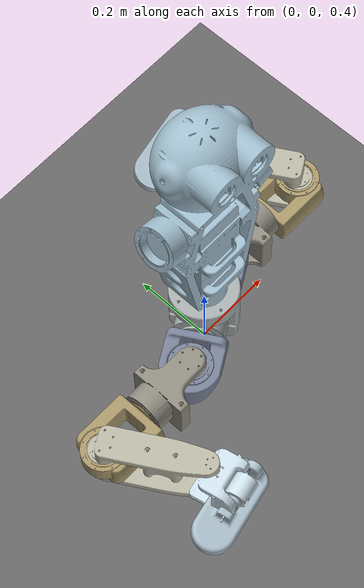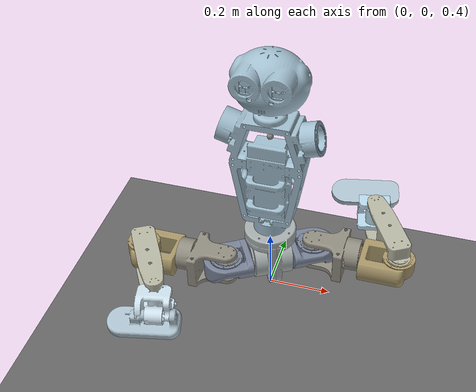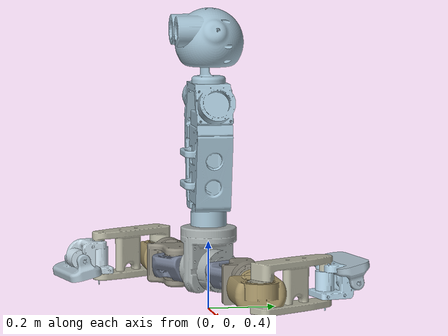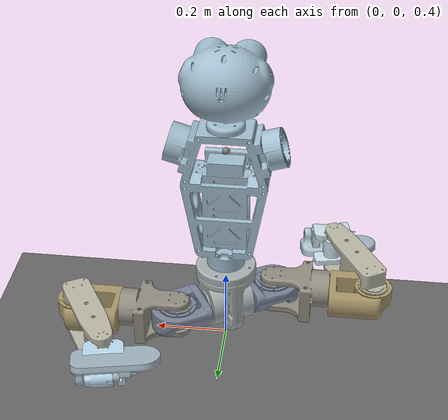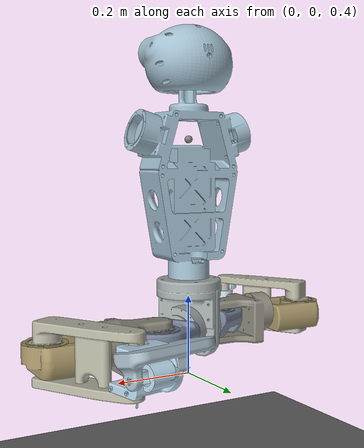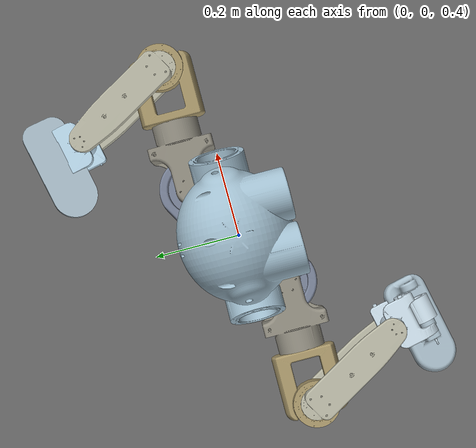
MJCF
<?xml version="1.0" ?>
<mujoco model="robot_7dof_arm">
  <compiler angle="radian" meshdir="meshes" autolimits="true"/>
  <default>
    <joint limited="true" damping="0.1" armature="0.01" frictionloss="0.0"/>
    <geom condim="3" contype="1" conaffinity="0" friction="0.9 0.2 0.2" solref="0.001 2"/>
    <motor ctrllimited="true"/>
    <equality solref="0.001 2"/>
    <default class="visualgeom">
      <geom type="mesh" condim="3" contype="0" conaffinity="0"/>
    </default>
    <default class="collision">
			<geom type="capsule" mass="0" density="0" condim="3" contype="1" conaffinity="1" group="3" />
		</default>
  </default>
  <option iterations="50" timestep="0.001" viscosity="1e-06" solver="PGS" gravity="0 0 -9.81">
    <flag frictionloss="enable"/>
  </option>
  <asset>
    <mesh name="fused_component_upper_limb_assembly_7_dof_1_torso_1_top_skeleton_2_simple" file="fused_component_upper_limb_assembly_7_dof_1_torso_1_top_skeleton_2_simple.stl"/>
    <mesh name="fused_component_upper_limb_assembly_7_dof_1_full_arm_7_dof_1_lower_arm_3_dof_1_hand_1_slide_2_simple" file="fused_component_upper_limb_assembly_7_dof_1_full_arm_7_dof_1_lower_arm_3_dof_1_hand_1_slide_2_simple.stl"/>
    <mesh name="fused_component_upper_limb_assembly_7_dof_1_full_arm_7_dof_1_lower_arm_3_dof_1_hand_1_slide_1_simple" file="fused_component_upper_limb_assembly_7_dof_1_full_arm_7_dof_1_lower_arm_3_dof_1_hand_1_slide_1_simple.stl"/>
    <mesh name="fused_component_upper_limb_assembly_7_dof_1_full_arm_7_dof_2_lower_arm_3_dof_1_hand_1_slide_2_simple" file="fused_component_upper_limb_assembly_7_dof_1_full_arm_7_dof_2_lower_arm_3_dof_1_hand_1_slide_2_simple.stl"/>
    <mesh name="fused_component_upper_limb_assembly_7_dof_1_full_arm_7_dof_2_lower_arm_3_dof_1_hand_1_slide_1_simple" file="fused_component_upper_limb_assembly_7_dof_1_full_arm_7_dof_2_lower_arm_3_dof_1_hand_1_slide_1_simple.stl"/>
    <mesh name="fused_component_upper_limb_assembly_7_dof_1_full_arm_7_dof_1_lower_arm_3_dof_1_rmd_x4_24_mock_3_inner_rmd_x4_24_1_simple" file="fused_component_upper_limb_assembly_7_dof_1_full_arm_7_dof_1_lower_arm_3_dof_1_rmd_x4_24_mock_3_inner_rmd_x4_24_1_simple.stl"/>
    <mesh name="fused_component_upper_limb_assembly_7_dof_1_full_arm_7_dof_2_lower_arm_3_dof_1_rmd_x4_24_mock_3_inner_rmd_x4_24_1_simple" file="fused_component_upper_limb_assembly_7_dof_1_full_arm_7_dof_2_lower_arm_3_dof_1_rmd_x4_24_mock_3_inner_rmd_x4_24_1_simple.stl"/>
    <mesh name="fused_component_lower_limbs_1_left_foot_1_rmd_x4_24_mock_1_inner_rmd_x4_24_1_simple" file="fused_component_lower_limbs_1_left_foot_1_rmd_x4_24_mock_1_inner_rmd_x4_24_1_simple.stl"/>
    <mesh name="fused_component_lower_limbs_1_right_foot_1_rmd_x4_24_mock_1_inner_rmd_x4_24_1_simple" file="fused_component_lower_limbs_1_right_foot_1_rmd_x4_24_mock_1_inner_rmd_x4_24_1_simple.stl"/>
    <mesh name="fused_component_upper_limb_assembly_7_dof_1_full_arm_7_dof_1_lower_arm_3_dof_1_rmd_x4_24_mock_2_inner_rmd_x4_24_1_simple" file="fused_component_upper_limb_assembly_7_dof_1_full_arm_7_dof_1_lower_arm_3_dof_1_rmd_x4_24_mock_2_inner_rmd_x4_24_1_simple.stl"/>
    <mesh name="fused_component_upper_limb_assembly_7_dof_1_full_arm_7_dof_2_lower_arm_3_dof_1_rmd_x4_24_mock_2_inner_rmd_x4_24_1_simple" file="fused_component_upper_limb_assembly_7_dof_1_full_arm_7_dof_2_lower_arm_3_dof_1_rmd_x4_24_mock_2_inner_rmd_x4_24_1_simple.stl"/>
    <mesh name="fused_component_lower_limbs_1_leg_assembly_1_rmd_x4_24_mock_1_outer_rmd_x4_24_1_simple" file="fused_component_lower_limbs_1_leg_assembly_1_rmd_x4_24_mock_1_outer_rmd_x4_24_1_simple.stl"/>
    <mesh name="fused_component_lower_limbs_1_leg_assembly_2_rmd_x4_24_mock_1_outer_rmd_x4_24_1_simple" file="fused_component_lower_limbs_1_leg_assembly_2_rmd_x4_24_mock_1_outer_rmd_x4_24_1_simple.stl"/>
    <mesh name="fused_component_upper_limb_assembly_7_dof_1_full_arm_7_dof_1_lower_arm_3_dof_1_rmd_x4_24_mock_1_outer_rmd_x4_24_1_simple" file="fused_component_upper_limb_assembly_7_dof_1_full_arm_7_dof_1_lower_arm_3_dof_1_rmd_x4_24_mock_1_outer_rmd_x4_24_1_simple.stl"/>
    <mesh name="fused_component_upper_limb_assembly_7_dof_1_full_arm_7_dof_2_lower_arm_3_dof_1_rmd_x4_24_mock_1_outer_rmd_x4_24_1_simple" file="fused_component_upper_limb_assembly_7_dof_1_full_arm_7_dof_2_lower_arm_3_dof_1_rmd_x4_24_mock_1_outer_rmd_x4_24_1_simple.stl"/>
    <mesh name="fused_component_lower_limbs_1_leg_assembly_1_rmd_x8_90_mock_3_inner_rmd_x8_90_1_simple" file="fused_component_lower_limbs_1_leg_assembly_1_rmd_x8_90_mock_3_inner_rmd_x8_90_1_simple.stl"/>
    <mesh name="fused_component_lower_limbs_1_leg_assembly_2_rmd_x8_90_mock_3_inner_rmd_x8_90_1_simple" file="fused_component_lower_limbs_1_leg_assembly_2_rmd_x8_90_mock_3_inner_rmd_x8_90_1_simple.stl"/>
    <mesh name="fused_component_upper_limb_assembly_7_dof_1_full_arm_7_dof_1_upper_left_arm_1_rmd_x4_24_mock_2_inner_rmd_x4_24_1_simple" file="fused_component_upper_limb_assembly_7_dof_1_full_arm_7_dof_1_upper_left_arm_1_rmd_x4_24_mock_2_inner_rmd_x4_24_1_simple.stl"/>
    <mesh name="fused_component_upper_limb_assembly_7_dof_1_full_arm_7_dof_2_upper_left_arm_1_rmd_x4_24_mock_2_inner_rmd_x4_24_1_simple" file="fused_component_upper_limb_assembly_7_dof_1_full_arm_7_dof_2_upper_left_arm_1_rmd_x4_24_mock_2_inner_rmd_x4_24_1_simple.stl"/>
    <mesh name="fused_component_lower_limbs_1_leg_assembly_1_rmd_x8_90_mock_2_inner_rmd_x8_90_1_simple" file="fused_component_lower_limbs_1_leg_assembly_1_rmd_x8_90_mock_2_inner_rmd_x8_90_1_simple.stl"/>
    <mesh name="fused_component_lower_limbs_1_leg_assembly_2_rmd_x8_90_mock_2_inner_rmd_x8_90_1_simple" file="fused_component_lower_limbs_1_leg_assembly_2_rmd_x8_90_mock_2_inner_rmd_x8_90_1_simple.stl"/>
    <mesh name="fused_component_lower_limbs_1_leg_assembly_1_rmd_x8_90_mock_1_inner_rmd_x8_90_1_simple" file="fused_component_lower_limbs_1_leg_assembly_1_rmd_x8_90_mock_1_inner_rmd_x8_90_1_simple.stl"/>
    <mesh name="fused_component_upper_limb_assembly_7_dof_1_full_arm_7_dof_1_upper_left_arm_1_rmd_x4_24_mock_1_outer_rmd_x4_24_1_simple" file="fused_component_upper_limb_assembly_7_dof_1_full_arm_7_dof_1_upper_left_arm_1_rmd_x4_24_mock_1_outer_rmd_x4_24_1_simple.stl"/>
    <mesh name="fused_component_upper_limb_assembly_7_dof_1_full_arm_7_dof_2_upper_left_arm_1_rmd_x4_24_mock_1_outer_rmd_x4_24_1_simple" file="fused_component_upper_limb_assembly_7_dof_1_full_arm_7_dof_2_upper_left_arm_1_rmd_x4_24_mock_1_outer_rmd_x4_24_1_simple.stl"/>
    <mesh name="fused_component_lower_limbs_1_leg_assembly_2_rmd_x8_90_mock_1_inner_rmd_x8_90_1_simple" file="fused_component_lower_limbs_1_leg_assembly_2_rmd_x8_90_mock_1_inner_rmd_x8_90_1_simple.stl"/>
    <mesh name="fused_component_lower_limbs_1_leg_assembly_1_rmd_x12_150_mock_1_inner_x12_150_1_simple" file="fused_component_lower_limbs_1_leg_assembly_1_rmd_x12_150_mock_1_inner_x12_150_1_simple.stl"/>
    <mesh name="fused_component_upper_limb_assembly_7_dof_1_full_arm_7_dof_1_upper_left_arm_1_rmd_x8_90_mock_2_inner_rmd_x8_90_1_simple" file="fused_component_upper_limb_assembly_7_dof_1_full_arm_7_dof_1_upper_left_arm_1_rmd_x8_90_mock_2_inner_rmd_x8_90_1_simple.stl"/>
    <mesh name="fused_component_upper_limb_assembly_7_dof_1_full_arm_7_dof_2_upper_left_arm_1_rmd_x8_90_mock_2_inner_rmd_x8_90_1_simple" file="fused_component_upper_limb_assembly_7_dof_1_full_arm_7_dof_2_upper_left_arm_1_rmd_x8_90_mock_2_inner_rmd_x8_90_1_simple.stl"/>
    <mesh name="fused_component_lower_limbs_1_leg_assembly_2_rmd_x12_150_mock_1_inner_x12_150_1_simple" file="fused_component_lower_limbs_1_leg_assembly_2_rmd_x12_150_mock_1_inner_x12_150_1_simple.stl"/>
    <mesh name="fused_component_upper_limb_assembly_7_dof_1_torso_1_rmd_x8_90_mock_1_inner_rmd_x8_90_1_simple" file="fused_component_upper_limb_assembly_7_dof_1_torso_1_rmd_x8_90_mock_1_inner_rmd_x8_90_1_simple.stl"/>
    <mesh name="fused_component_upper_limb_assembly_7_dof_1_full_arm_7_dof_1_upper_left_arm_1_rmd_x8_90_mock_1_inner_rmd_x8_90_1_simple" file="fused_component_upper_limb_assembly_7_dof_1_full_arm_7_dof_1_upper_left_arm_1_rmd_x8_90_mock_1_inner_rmd_x8_90_1_simple.stl"/>
    <mesh name="fused_component_upper_limb_assembly_7_dof_1_full_arm_7_dof_2_upper_left_arm_1_rmd_x8_90_mock_1_inner_rmd_x8_90_1_simple" file="fused_component_upper_limb_assembly_7_dof_1_full_arm_7_dof_2_upper_left_arm_1_rmd_x8_90_mock_1_inner_rmd_x8_90_1_simple.stl"/>
    <texture name="texplane" type="2d" builtin="checker" rgb1=".0 .0 .0" rgb2=".8 .8 .8" width="100" height="108"/>
    <material name="matplane" reflectance="0." texture="texplane" texrepeat="1 1" texuniform="true"/>
    <material name="visualgeom" rgba="0.5 0.9 0.2 1"/>
  </asset>
  <worldbody>
    <geom name="ground" type="plane" pos="0.001 0 0" quat="1 0 0 0" material="matplane" condim="3" contype="0" conaffinity="1" size="0 0 1"/>
    <light directional="true" diffuse="0.6 0.6 0.6" specular="0.2 0.2 0.2" pos="0 0 4" dir="0 0 -1"/>
    <light directional="true" diffuse="0.4 0.4 0.4" specular="0.1 0.1 0.1" pos="0 0 5.0" dir="0 0 -1" castshadow="false"/>
    <body name="root" pos="0 0 1.0" quat="1 0 0 0">
			<camera name="front" pos="0 -3 1" xyaxes="1 0 0 0 1 2" mode="trackcom"/>
			<camera name="side" pos="-2.893 -1.330 1.257" xyaxes="0.405 -0.914 0.000 0.419 0.186 0.889" mode="trackcom"/>
      <joint name="root_x" type="slide" axis="1 0 0" limited="false"/>
      <joint name="root_y" type="slide" axis="0 1 0" limited="false"/>
      <joint name="root_z" type="slide" axis="0 0 1" limited="false"/>
      <joint name="root_ball" type="ball" limited="false"/>
      <site name="imu" size="0.01" pos="0 0 0"/>
      <geom type="mesh" rgba="0.628022 0.741104 0.805209 1" mesh="fused_component_upper_limb_assembly_7_dof_1_torso_1_top_skeleton_2_simple" class="visualgeom"/>
      <geom type="mesh" rgba="0.628022 0.741104 0.805209 1" mesh="fused_component_upper_limb_assembly_7_dof_1_torso_1_top_skeleton_2_simple" contype="0" conaffinity="0" group="1" density="0"/>
      <body name="fused_component_upper_limb_assembly_7_dof_1_torso_1_rmd_x8_90_mock_1_inner_rmd_x8_90_1" pos="-2.34973e-08 0.000437101 -0.351562" quat="1.64085e-08 -0.707107 0.707107 -1.64085e-08">
        <joint name="torso roll" pos="0 0 0" axis="0 0 -1" range="-3.14159 3.14159" actuatorfrcrange="-80 80" ref="2.58"/>
        <geom type="mesh" rgba="0.651593 0.680025 0.679902 1" mesh="fused_component_upper_limb_assembly_7_dof_1_torso_1_rmd_x8_90_mock_1_inner_rmd_x8_90_1_simple" class="visualgeom"/>
        <geom type="mesh" rgba="0.651593 0.680025 0.679902 1" mesh="fused_component_upper_limb_assembly_7_dof_1_torso_1_rmd_x8_90_mock_1_inner_rmd_x8_90_1_simple" contype="0" conaffinity="0" group="1" density="0"/>
        <body name="fused_component_lower_limbs_1_leg_assembly_2_rmd_x12_150_mock_1_inner_x12_150_1" pos="0.02225 0.0385381 0.131" quat="0.612372 0.353553 -0.612372 0.353553">
          <joint name="left hip pitch" pos="0 0 0" axis="0 0 -1" range="-4.71239 4.71239" actuatorfrcrange="-80 80" ref="-1.6"/>
          <geom type="mesh" rgba="0.468627 0.505882 0.587255 1" mesh="fused_component_lower_limbs_1_leg_assembly_2_rmd_x12_150_mock_1_inner_x12_150_1_simple" class="visualgeom"/>
          <geom type="mesh" rgba="0.468627 0.505882 0.587255 1" mesh="fused_component_lower_limbs_1_leg_assembly_2_rmd_x12_150_mock_1_inner_x12_150_1_simple" contype="0" conaffinity="0" group="1" density="0"/>
          <body name="fused_component_lower_limbs_1_leg_assembly_2_rmd_x8_90_mock_1_inner_rmd_x8_90_1" pos="-0.0244382 -0.000630373 -0.1015" quat="0.5 0.5 -0.5 -0.5">
            <joint name="left hip yaw" pos="0 0 0" axis="0 0 -1" range="-3.14159 3.14159" actuatorfrcrange="-80 80" ref="-2.12"/>
            <geom type="mesh" rgba="0.562255 0.547549 0.49951 1" mesh="fused_component_lower_limbs_1_leg_assembly_2_rmd_x8_90_mock_1_inner_rmd_x8_90_1_simple" class="visualgeom"/>
            <geom type="mesh" rgba="0.562255 0.547549 0.49951 1" mesh="fused_component_lower_limbs_1_leg_assembly_2_rmd_x8_90_mock_1_inner_rmd_x8_90_1_simple" contype="0" conaffinity="0" group="1" density="0"/>
            <body name="fused_component_lower_limbs_1_leg_assembly_2_rmd_x8_90_mock_2_inner_rmd_x8_90_1" pos="-0.07875 -0.136399 -0.01965" quat="0.683013 0.683013 -0.183013 -0.183013">
              <joint name="left hip roll" pos="0 0 0" axis="0 0 -1" range="-3.14159 3.14159" actuatorfrcrange="-80 80" ref="1.41"/>
              <geom type="mesh" rgba="0.655882 0.589216 0.411765 1" mesh="fused_component_lower_limbs_1_leg_assembly_2_rmd_x8_90_mock_2_inner_rmd_x8_90_1_simple" class="visualgeom"/>
              <geom type="mesh" rgba="0.655882 0.589216 0.411765 1" mesh="fused_component_lower_limbs_1_leg_assembly_2_rmd_x8_90_mock_2_inner_rmd_x8_90_1_simple" contype="0" conaffinity="0" group="1" density="0"/>
              <body name="fused_component_lower_limbs_1_leg_assembly_2_rmd_x8_90_mock_3_inner_rmd_x8_90_1" pos="6.61991e-09 0.02065 0.127" quat="0.5 -0.5 0.5 0.5">
                <joint name="left knee pitch" pos="0 0 0" axis="0 0 -1" range="-3.14159 3.14159" actuatorfrcrange="-80 80" ref="2.01"/>
                <geom type="mesh" rgba="0.719118 0.715196 0.643137 1" mesh="fused_component_lower_limbs_1_leg_assembly_2_rmd_x8_90_mock_3_inner_rmd_x8_90_1_simple" class="visualgeom"/>
                <geom type="mesh" rgba="0.719118 0.715196 0.643137 1" mesh="fused_component_lower_limbs_1_leg_assembly_2_rmd_x8_90_mock_3_inner_rmd_x8_90_1_simple" contype="0" conaffinity="0" group="1" density="0"/>
                <body name="fused_component_lower_limbs_1_leg_assembly_2_rmd_x4_24_mock_1_outer_rmd_x4_24_1" pos="0.123 -0.213042 -0.0129" quat="2.60501e-08 -0.104528 0.994522 -3.67176e-08">
                  <joint name="left ankle pitch" pos="0 0 0" axis="0 0 -1" range="-3.14159 3.14159" actuatorfrcrange="-80 80" ref="0.238"/>
                  <geom type="mesh" rgba="0.804412 0.877941 0.922059 1" mesh="fused_component_lower_limbs_1_leg_assembly_2_rmd_x4_24_mock_1_outer_rmd_x4_24_1_simple" class="visualgeom"/>
                  <geom type="mesh" rgba="0.804412 0.877941 0.922059 1" mesh="fused_component_lower_limbs_1_leg_assembly_2_rmd_x4_24_mock_1_outer_rmd_x4_24_1_simple" contype="0" conaffinity="0" group="1" density="0"/>
                  <body name="fused_component_lower_limbs_1_left_foot_1_rmd_x4_24_mock_1_inner_rmd_x4_24_1" pos="0.0135 -0.07155 0.01055" quat="0.5 -0.5 -0.5 0.5">
                    <joint name="right ankle roll" pos="0 0 0" axis="0 0 -1" range="-3.14159 3.14159" actuatorfrcrange="-80 80" ref="1.92"/>
                    <geom type="mesh" rgba="0.669608 0.748039 0.794118 1" mesh="fused_component_lower_limbs_1_left_foot_1_rmd_x4_24_mock_1_inner_rmd_x4_24_1_simple" class="visualgeom"/>
                    <!-- Add collision geometries here -->
                    <geom class="collision" type="capsule" fromto="0 0.005 -.17 -.02 0.005 -.01" size="0.05" rgba="0.647059 0.647059 0.647059 1" />
                    <geom class="collision" type="capsule" fromto="0 0.005 -.17 .02 0.005 -.01" size="0.05" rgba="0.647059 0.647059 0.647059 1" />
                  </body>
                </body>
              </body>
            </body>
          </body>
        </body>
        <body name="fused_component_lower_limbs_1_leg_assembly_1_rmd_x12_150_mock_1_inner_x12_150_1" pos="-0.02225 -0.0385381 0.131" quat="0.353553 -0.612372 -0.353553 -0.612372">
          <joint name="right hip pitch" pos="0 0 0" axis="0 0 -1" range="-4.71239 4.71239" actuatorfrcrange="-80 80" ref="1.76"/>
          <geom type="mesh" rgba="0.468627 0.505882 0.587255 1" mesh="fused_component_lower_limbs_1_leg_assembly_1_rmd_x12_150_mock_1_inner_x12_150_1_simple" class="visualgeom"/>
          <geom type="mesh" rgba="0.468627 0.505882 0.587255 1" mesh="fused_component_lower_limbs_1_leg_assembly_1_rmd_x12_150_mock_1_inner_x12_150_1_simple" contype="0" conaffinity="0" group="1" density="0"/>
          <body name="fused_component_lower_limbs_1_leg_assembly_1_rmd_x8_90_mock_1_inner_rmd_x8_90_1" pos="-0.0244382 -0.000630373 -0.1015" quat="0.5 0.5 -0.5 -0.5">
            <joint name="right hip yaw" pos="0 0 0" axis="0 0 -1" range="-3.14159 3.14159" actuatorfrcrange="-80 80" ref="0.967"/>
            <geom type="mesh" rgba="0.562255 0.547549 0.49951 1" mesh="fused_component_lower_limbs_1_leg_assembly_1_rmd_x8_90_mock_1_inner_rmd_x8_90_1_simple" class="visualgeom"/>
            <geom type="mesh" rgba="0.562255 0.547549 0.49951 1" mesh="fused_component_lower_limbs_1_leg_assembly_1_rmd_x8_90_mock_1_inner_rmd_x8_90_1_simple" contype="0" conaffinity="0" group="1" density="0"/>
            <body name="fused_component_lower_limbs_1_leg_assembly_1_rmd_x8_90_mock_2_inner_rmd_x8_90_1" pos="-0.07875 -0.136399 -0.01965" quat="0.683013 0.683013 -0.183013 -0.183013">
              <joint name="right hip roll" pos="0 0 0" axis="0 0 -1" range="-3.14159 3.14159" actuatorfrcrange="-80 80" ref="-1.54"/>
              <geom type="mesh" rgba="0.655882 0.589216 0.411765 1" mesh="fused_component_lower_limbs_1_leg_assembly_1_rmd_x8_90_mock_2_inner_rmd_x8_90_1_simple" class="visualgeom"/>
              <geom type="mesh" rgba="0.655882 0.589216 0.411765 1" mesh="fused_component_lower_limbs_1_leg_assembly_1_rmd_x8_90_mock_2_inner_rmd_x8_90_1_simple" contype="0" conaffinity="0" group="1" density="0"/>
              <body name="fused_component_lower_limbs_1_leg_assembly_1_rmd_x8_90_mock_3_inner_rmd_x8_90_1" pos="6.61991e-09 0.02065 0.127" quat="0.5 -0.5 0.5 0.5">
                <joint name="right knee pitch" pos="0 0 0" axis="0 0 -1" range="-3.14159 3.14159" actuatorfrcrange="-80 80" ref="2.07"/>
                <geom type="mesh" rgba="0.719118 0.715196 0.643137 1" mesh="fused_component_lower_limbs_1_leg_assembly_1_rmd_x8_90_mock_3_inner_rmd_x8_90_1_simple" class="visualgeom"/>
                <geom type="mesh" rgba="0.719118 0.715196 0.643137 1" mesh="fused_component_lower_limbs_1_leg_assembly_1_rmd_x8_90_mock_3_inner_rmd_x8_90_1_simple" contype="0" conaffinity="0" group="1" density="0"/>
                <body name="fused_component_lower_limbs_1_leg_assembly_1_rmd_x4_24_mock_1_outer_rmd_x4_24_1" pos="0.123 -0.213042 -0.0129" quat="2.60501e-08 -0.104528 0.994522 -3.67176e-08">
                  <joint name="right ankle pitch" pos="0 0 0" axis="0 0 -1" range="-3.14159 3.14159" actuatorfrcrange="-80 80" ref="0.377"/>
                  <geom type="mesh" rgba="0.728922 0.851471 0.925 1" mesh="fused_component_lower_limbs_1_leg_assembly_1_rmd_x4_24_mock_1_outer_rmd_x4_24_1_simple" class="visualgeom"/>
                  <geom type="mesh" rgba="0.728922 0.851471 0.925 1" mesh="fused_component_lower_limbs_1_leg_assembly_1_rmd_x4_24_mock_1_outer_rmd_x4_24_1_simple" contype="0" conaffinity="0" group="1" density="0"/>
                  <body name="fused_component_lower_limbs_1_right_foot_1_rmd_x4_24_mock_1_inner_rmd_x4_24_1" pos="-0.0135 -0.07155 0.01055" quat="0.5 0.5 0.5 0.5">
                    <joint name="left ankle roll" pos="0 0 0" axis="0 0 -1" range="-3.14159 3.14159" actuatorfrcrange="-80 80" ref="1.85"/>
                    <geom type="mesh" rgba="0.669608 0.748039 0.794118 1" mesh="fused_component_lower_limbs_1_right_foot_1_rmd_x4_24_mock_1_inner_rmd_x4_24_1_simple" class="visualgeom"/>
                    <geom type="mesh" rgba="0.669608 0.748039 0.794118 1" mesh="fused_component_lower_limbs_1_right_foot_1_rmd_x4_24_mock_1_inner_rmd_x4_24_1_simple" contype="0" conaffinity="0" group="1" density="0"/>
                    <!-- Add collision geometries here -->
                    <geom class="collision" type="capsule" fromto="0 0.005 -.17 -.02 0.005 -.01" size="0.05" rgba="0.647059 0.647059 0.647059 1" />
                    <geom class="collision" type="capsule" fromto="0 0.005 -.17 .02 0.005 -.01" size="0.05" rgba="0.647059 0.647059 0.647059 1" />
                  </body>
                </body>
              </body>
            </body>
          </body>
        </body>
      </body>
    </body>
  </worldbody>
  <actuator>
    <motor name="torso roll" joint="torso roll" ctrllimited="true" ctrlrange="-200 200" gear="1"/>
    <motor name="left hip pitch" joint="left hip pitch" ctrllimited="true" ctrlrange="-200 200" gear="1"/>
    <motor name="left hip roll" joint="left hip roll" ctrllimited="true" ctrlrange="-200 200" gear="1"/>
    <motor name="left hip yaw" joint="left hip yaw" ctrllimited="true" ctrlrange="-200 200" gear="1"/>
    <motor name="left knee pitch" joint="left knee pitch" ctrllimited="true" ctrlrange="-200 200" gear="1"/>
    <motor name="left ankle pitch" joint="left ankle pitch" ctrllimited="true" ctrlrange="-200 200" gear="1"/>
    <motor name="left ankle roll" joint="left ankle roll" ctrllimited="true" ctrlrange="-200 200" gear="1"/>
    <motor name="right hip pitch" joint="right hip pitch" ctrllimited="true" ctrlrange="-200 200" gear="1"/>
    <motor name="right hip roll" joint="right hip roll" ctrllimited="true" ctrlrange="-200 200" gear="1"/>
    <motor name="right hip yaw" joint="right hip yaw" ctrllimited="true" ctrlrange="-200 200" gear="1"/>
    <motor name="right knee pitch" joint="right knee pitch" ctrllimited="true" ctrlrange="-200 200" gear="1"/>
    <motor name="right ankle pitch" joint="right ankle pitch" ctrllimited="true" ctrlrange="-200 200" gear="1"/>
    <motor name="right ankle roll" joint="right ankle roll" ctrllimited="true" ctrlrange="-200 200" gear="1"/>
  </actuator>
  <sensor>
    <actuatorpos name="torso roll_p" actuator="torso roll" user="13"/>
    <actuatorpos name="left hip pitch_p" actuator="left hip pitch" user="13"/>
    <actuatorpos name="left hip roll_p" actuator="left hip roll" user="13"/>
    <actuatorpos name="left hip yaw_p" actuator="left hip yaw" user="13"/>
    <actuatorpos name="left knee pitch_p" actuator="left knee pitch" user="13"/>
    <actuatorpos name="left ankle pitch_p" actuator="left ankle pitch" user="13"/>
    <actuatorpos name="left ankle roll_p" actuator="left ankle roll" user="13"/>
    <actuatorpos name="right hip pitch_p" actuator="right hip pitch" user="13"/>
    <actuatorpos name="right hip roll_p" actuator="right hip roll" user="13"/>
    <actuatorpos name="right hip yaw_p" actuator="right hip yaw" user="13"/>
    <actuatorpos name="right knee pitch_p" actuator="right knee pitch" user="13"/>
    <actuatorpos name="right ankle pitch_p" actuator="right ankle pitch" user="13"/>
    <actuatorpos name="right ankle roll_p" actuator="right ankle roll" user="13"/>
    <actuatorvel name="torso roll_v" actuator="torso roll" user="13"/>
    <actuatorvel name="left hip pitch_v" actuator="left hip pitch" user="13"/>
    <actuatorvel name="left hip roll_v" actuator="left hip roll" user="13"/>
    <actuatorvel name="left hip yaw_v" actuator="left hip yaw" user="13"/>
    <actuatorvel name="left knee pitch_v" actuator="left knee pitch" user="13"/>
    <actuatorvel name="left ankle pitch_v" actuator="left ankle pitch" user="13"/>
    <actuatorvel name="left ankle roll_v" actuator="left ankle roll" user="13"/>
    <actuatorvel name="right hip pitch_v" actuator="right hip pitch" user="13"/>
    <actuatorvel name="right hip roll_v" actuator="right hip roll" user="13"/>
    <actuatorvel name="right hip yaw_v" actuator="right hip yaw" user="13"/>
    <actuatorvel name="right knee pitch_v" actuator="right knee pitch" user="13"/>
    <actuatorvel name="right ankle pitch_v" actuator="right ankle pitch" user="13"/>
    <actuatorvel name="right ankle roll_v" actuator="right ankle roll" user="13"/>
    <actuatorfrc name="torso roll_f" actuator="torso roll" user="13" noise="0.001"/>
    <actuatorfrc name="left hip pitch_f" actuator="left hip pitch" user="13" noise="0.001"/>
    <actuatorfrc name="left hip roll_f" actuator="left hip roll" user="13" noise="0.001"/>
    <actuatorfrc name="left hip yaw_f" actuator="left hip yaw" user="13" noise="0.001"/>
    <actuatorfrc name="left knee pitch_f" actuator="left knee pitch" user="13" noise="0.001"/>
    <actuatorfrc name="left ankle pitch_f" actuator="left ankle pitch" user="13" noise="0.001"/>
    <actuatorfrc name="left ankle roll_f" actuator="left ankle roll" user="13" noise="0.001"/>
    <actuatorfrc name="right hip pitch_f" actuator="right hip pitch" user="13" noise="0.001"/>
    <actuatorfrc name="right hip roll_f" actuator="right hip roll" user="13" noise="0.001"/>
    <actuatorfrc name="right hip yaw_f" actuator="right hip yaw" user="13" noise="0.001"/>
    <actuatorfrc name="right knee pitch_f" actuator="right knee pitch" user="13" noise="0.001"/>
    <actuatorfrc name="right ankle pitch_f" actuator="right ankle pitch" user="13" noise="0.001"/>
    <actuatorfrc name="right ankle roll_f" actuator="right ankle roll" user="13" noise="0.001"/>>
    <framequat name="orientation" objtype="site" noise="0.001" objname="imu"/>
    <gyro name="angular-velocity" site="imu" noise="0.005" cutoff="34.9"/>
  </sensor>
  <keyframe>
    <key name="default" qpos='0 0 0.14 1 0 0 0 -1.28822 0 -1.0997 -3.142 -1.97946 0.72266 -2.60786 0.2356 -1.16254 -3.142 -2.07372 0.72266 -2.73354'/>
  </keyframe>
</mujoco>
